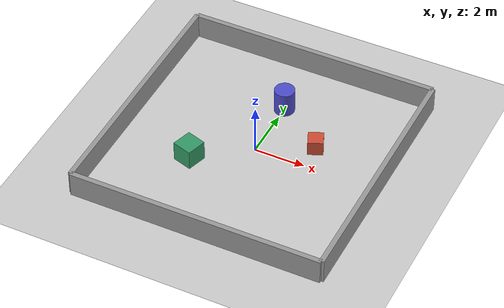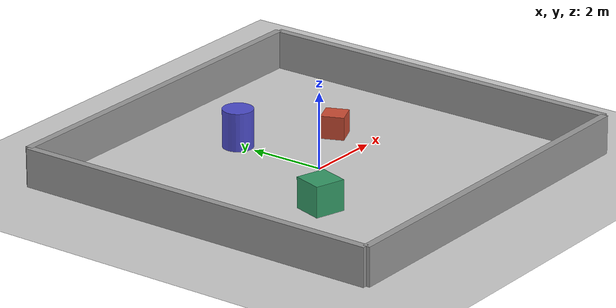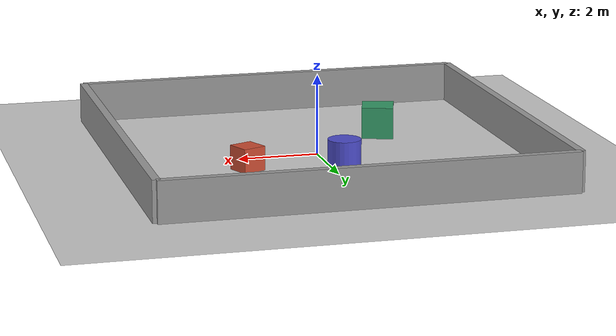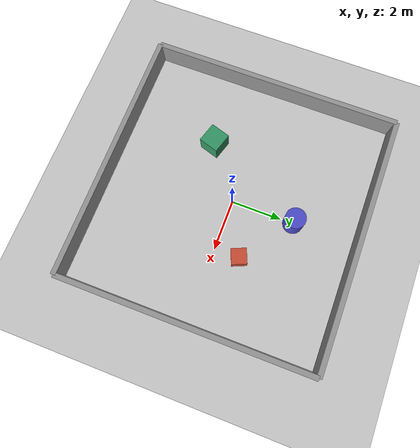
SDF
<?xml version="1.0" ?>
<!--
  第 07 课：一个最简仿真世界。
  地面 + 光源 + 几堵墙/箱子，给激光雷达提供可以扫到的障碍物。
-->
<sdf version="1.10">
  <world name="simple_world">

    <plugin filename="gz-sim-physics-system" name="gz::sim::systems::Physics"/>
    <plugin filename="gz-sim-user-commands-system" name="gz::sim::systems::UserCommands"/>
    <plugin filename="gz-sim-scene-broadcaster-system" name="gz::sim::systems::SceneBroadcaster"/>
    <plugin filename="gz-sim-sensors-system" name="gz::sim::systems::Sensors">
      <render_engine>ogre2</render_engine>
    </plugin>

    <light type="directional" name="sun">
      <cast_shadows>true</cast_shadows>
      <pose>0 0 10 0 0 0</pose>
      <diffuse>0.8 0.8 0.8 1</diffuse>
      <specular>0.2 0.2 0.2 1</specular>
      <attenuation>
        <range>1000</range>
        <constant>0.9</constant>
        <linear>0.01</linear>
        <quadratic>0.001</quadratic>
      </attenuation>
      <direction>-0.5 0.1 -0.9</direction>
    </light>

    <model name="ground_plane">
      <static>true</static>
      <link name="link">
        <collision name="collision">
          <geometry>
            <plane>
              <normal>0 0 1</normal>
              <size>100 100</size>
            </plane>
          </geometry>
          <surface>
            <friction>
              <ode><mu>100</mu><mu2>50</mu2></ode>
            </friction>
          </surface>
        </collision>
        <visual name="visual">
          <geometry>
            <plane>
              <normal>0 0 1</normal>
              <size>100 100</size>
            </plane>
          </geometry>
          <material>
            <ambient>0.8 0.8 0.8 1</ambient>
            <diffuse>0.8 0.8 0.8 1</diffuse>
          </material>
        </visual>
      </link>
    </model>

    <!-- 四面围墙（10m x 10m） -->
    <model name="wall_north">
      <static>true</static>
      <pose>0 5 0.5 0 0 0</pose>
      <link name="link">
        <collision name="c"><geometry><box><size>10 0.2 1</size></box></geometry></collision>
        <visual name="v"><geometry><box><size>10 0.2 1</size></box></geometry>
          <material><ambient>0.6 0.6 0.6 1</ambient><diffuse>0.6 0.6 0.6 1</diffuse></material></visual>
      </link>
    </model>
    <model name="wall_south">
      <static>true</static>
      <pose>0 -5 0.5 0 0 0</pose>
      <link name="link">
        <collision name="c"><geometry><box><size>10 0.2 1</size></box></geometry></collision>
        <visual name="v"><geometry><box><size>10 0.2 1</size></box></geometry>
          <material><ambient>0.6 0.6 0.6 1</ambient><diffuse>0.6 0.6 0.6 1</diffuse></material></visual>
      </link>
    </model>
    <model name="wall_east">
      <static>true</static>
      <pose>5 0 0.5 0 0 1.5707</pose>
      <link name="link">
        <collision name="c"><geometry><box><size>10 0.2 1</size></box></geometry></collision>
        <visual name="v"><geometry><box><size>10 0.2 1</size></box></geometry>
          <material><ambient>0.6 0.6 0.6 1</ambient><diffuse>0.6 0.6 0.6 1</diffuse></material></visual>
      </link>
    </model>
    <model name="wall_west">
      <static>true</static>
      <pose>-5 0 0.5 0 0 1.5707</pose>
      <link name="link">
        <collision name="c"><geometry><box><size>10 0.2 1</size></box></geometry></collision>
        <visual name="v"><geometry><box><size>10 0.2 1</size></box></geometry>
          <material><ambient>0.6 0.6 0.6 1</ambient><diffuse>0.6 0.6 0.6 1</diffuse></material></visual>
      </link>
    </model>

    <!-- 几个障碍物 -->
    <model name="box1">
      <static>true</static>
      <pose>2 1 0.3 0 0 0.4</pose>
      <link name="link">
        <collision name="c"><geometry><box><size>0.6 0.6 0.6</size></box></geometry></collision>
        <visual name="v"><geometry><box><size>0.6 0.6 0.6</size></box></geometry>
          <material><ambient>0.8 0.3 0.2 1</ambient><diffuse>0.8 0.3 0.2 1</diffuse></material></visual>
      </link>
    </model>
    <model name="box2">
      <static>true</static>
      <pose>-2 -1.5 0.4 0 0 -0.3</pose>
      <link name="link">
        <collision name="c"><geometry><box><size>0.8 0.8 0.8</size></box></geometry></collision>
        <visual name="v"><geometry><box><size>0.8 0.8 0.8</size></box></geometry>
          <material><ambient>0.2 0.6 0.4 1</ambient><diffuse>0.2 0.6 0.4 1</diffuse></material></visual>
      </link>
    </model>
    <model name="cylinder1">
      <static>true</static>
      <pose>0 2.5 0.5 0 0 0</pose>
      <link name="link">
        <collision name="c"><geometry><cylinder><radius>0.4</radius><length>1.0</length></cylinder></geometry></collision>
        <visual name="v"><geometry><cylinder><radius>0.4</radius><length>1.0</length></cylinder></geometry>
          <material><ambient>0.3 0.3 0.8 1</ambient><diffuse>0.3 0.3 0.8 1</diffuse></material></visual>
      </link>
    </model>

  </world>
</sdf>
